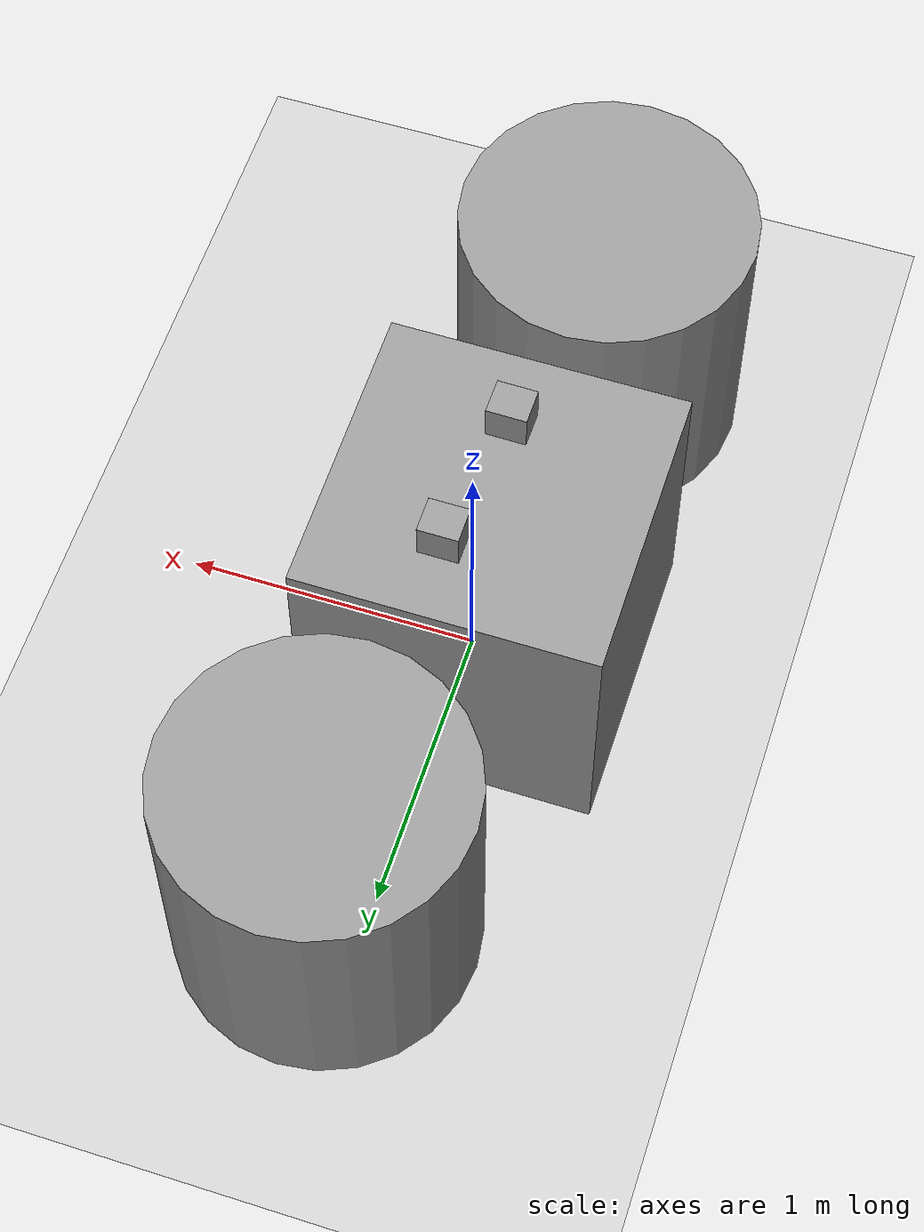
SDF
<sdf version="1.7">
 <world name="default">
  <light name="sun" type="directional">
   <pose>0 0 10 0 -0 0</pose>
   <diffuse>0.8 0.8 0.8 1</diffuse>
   <specular>0.2 0.2 0.2 1</specular>
   <attenuation>
    <range>1000</range>
    <constant>0.9</constant>
    <linear>0.01</linear>
    <quadratic>0.001</quadratic>
   </attenuation>
   <direction>-0.5 0.1 -0.9</direction>
   <spot><inner_angle>0</inner_angle><outer_angle>0</outer_angle><falloff>0</falloff></spot>
  </light>
  <model name="ground_plane">
   <static>1</static>
   <link name="link">
    <collision name="collision">
     <geometry><plane><normal>0 0 1</normal><size>100 100</size></plane></geometry>
     <surface>
      <contact><collide_bitmask>65535</collide_bitmask></contact>
      <friction><ode><mu>100</mu><mu2>50</mu2></ode></friction>
     </surface>
    </collision>
    <visual name="visual">
     <cast_shadows>0</cast_shadows>
     <geometry><plane><normal>0 0 1</normal><size>100 100</size></plane></geometry>
     <material>
      <script><uri>file://media/materials/scripts/gazebo.material</uri><name>Gazebo/Grey</name></script>
     </material>
    </visual>
   </link>
  </model>
  <gravity>0 0 -9.8</gravity>
  <magnetic_field>6e-06 2.3e-05 -4.2e-05</magnetic_field>
  <atmosphere type="adiabatic"/>
  <physics type="ode">
   <max_step_size>0.001</max_step_size>
   <real_time_factor>1</real_time_factor>
   <real_time_update_rate>1000</real_time_update_rate>
  </physics>
  <scene><ambient>0.4 0.4 0.4 1</ambient><background>0.7 0.7 0.7 1</background><shadows>1</shadows></scene>
  <spherical_coordinates>
   <surface_model>EARTH_WGS84</surface_model>
   <latitude_deg>0</latitude_deg>
   <longitude_deg>0</longitude_deg>
   <elevation>0</elevation>
   <heading_deg>0</heading_deg>
  </spherical_coordinates>
  <model name="unit_box">
   <pose>-0.065266 0.000303 0.499936 -0.000254 6.2e-05 -0.000959</pose>
   <link name="link">
    <inertial>
     <mass>1</mass>
     <inertia>
      <ixx>0.166667</ixx>
      <ixy>0</ixy>
      <ixz>0</ixz>
      <iyy>0.166667</iyy>
      <iyz>0</iyz>
      <izz>0.166667</izz>
     </inertia>
    </inertial>
    <collision name="collision"><geometry><box><size>1 1 1</size></box></geometry></collision>
    <visual name="visual">
     <geometry><box><size>1 1 1</size></box></geometry>
     <material>
      <script><name>Gazebo/Grey</name><uri>file://media/materials/scripts/gazebo.material</uri></script>
     </material>
    </visual>
   </link>
  </model>
  <model name="unit_box_0">
   <pose>-0.048452 -0.244337 1.06371 -5.6e-05 -3e-06 -0.012229</pose>
   <link name="link">
    <inertial>
     <mass>1</mass>
     <inertia>
      <ixx>0.166667</ixx>
      <ixy>0</ixy>
      <ixz>0</ixz>
      <iyy>0.166667</iyy>
      <iyz>0</iyz>
      <izz>0.166667</izz>
     </inertia>
    </inertial>
    <collision name="collision">
     <geometry><box><size>0.134427 0.119394 0.127346</size></box></geometry>
    </collision>
    <visual name="visual">
     <geometry><box><size>0.134427 0.119394 0.127346</size></box></geometry>
     <material>
      <script><name>Gazebo/Grey</name><uri>file://media/materials/scripts/gazebo.material</uri></script>
     </material>
    </visual>
   </link>
  </model>
  <model name="unit_box_0_clone">
   <pose>0.019443 0.23055 1.06352 -0.000361 6.8e-05 -0.002035</pose>
   <link name="link">
    <inertial>
     <mass>1</mass>
     <inertia>
      <ixx>0.166667</ixx>
      <ixy>0</ixy>
      <ixz>0</ixz>
      <iyy>0.166667</iyy>
      <iyz>0</iyz>
      <izz>0.166667</izz>
     </inertia>
    </inertial>
    <collision name="collision">
     <geometry><box><size>0.134428 0.119394 0.127346</size></box></geometry>
    </collision>
    <visual name="visual">
     <geometry><box><size>0.134428 0.119394 0.127346</size></box></geometry>
     <material>
      <script><name>Gazebo/Grey</name><uri>file://media/materials/scripts/gazebo.material</uri></script>
     </material>
    </visual>
   </link>
  </model>
  <model name="unit_cylinder">
   <pose>-0.111228 -1.1164 0.499993 -3e-06 -4e-06 -0</pose>
   <link name="link">
    <inertial>
     <mass>1</mass>
     <inertia><ixx>0.145833</ixx><ixy>0</ixy><ixz>0</ixz><iyy>0.145833</iyy><iyz>0</iyz><izz>0.125</izz></inertia>
    </inertial>
    <collision name="collision">
     <geometry><cylinder><radius>0.5</radius><length>1</length></cylinder></geometry>
    </collision>
    <visual name="visual">
     <geometry><cylinder><radius>0.5</radius><length>1</length></cylinder></geometry>
     <material>
      <script><name>Gazebo/Grey</name><uri>file://media/materials/scripts/gazebo.material</uri></script>
     </material>
    </visual>
   </link>
  </model>
  <model name="unit_cylinder_0">
   <pose>0.122004 1.12704 0.499997 3e-06 4e-06 -0</pose>
   <link name="link">
    <inertial>
     <mass>1</mass>
     <inertia><ixx>0.145833</ixx><ixy>0</ixy><ixz>0</ixz><iyy>0.145833</iyy><iyz>0</iyz><izz>0.125</izz></inertia>
    </inertial>
    <collision name="collision">
     <geometry><cylinder><radius>0.5</radius><length>1</length></cylinder></geometry>
    </collision>
    <visual name="visual">
     <geometry><cylinder><radius>0.5</radius><length>1</length></cylinder></geometry>
     <material>
      <script><name>Gazebo/Grey</name><uri>file://media/materials/scripts/gazebo.material</uri></script>
     </material>
    </visual>
   </link>
  </model>
 </world>
</sdf>
